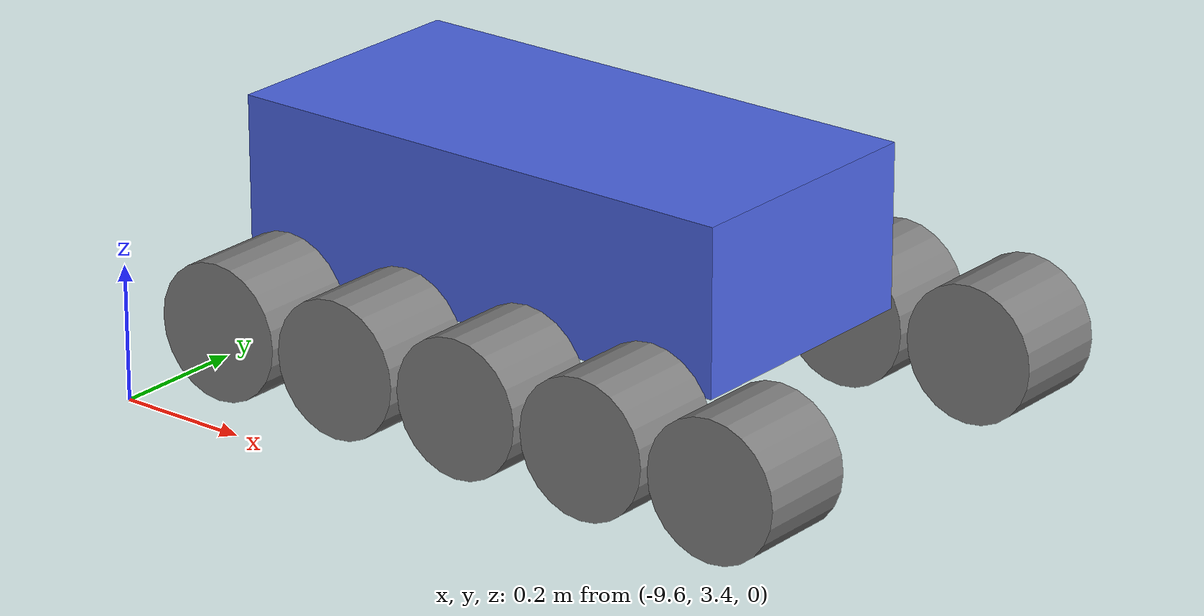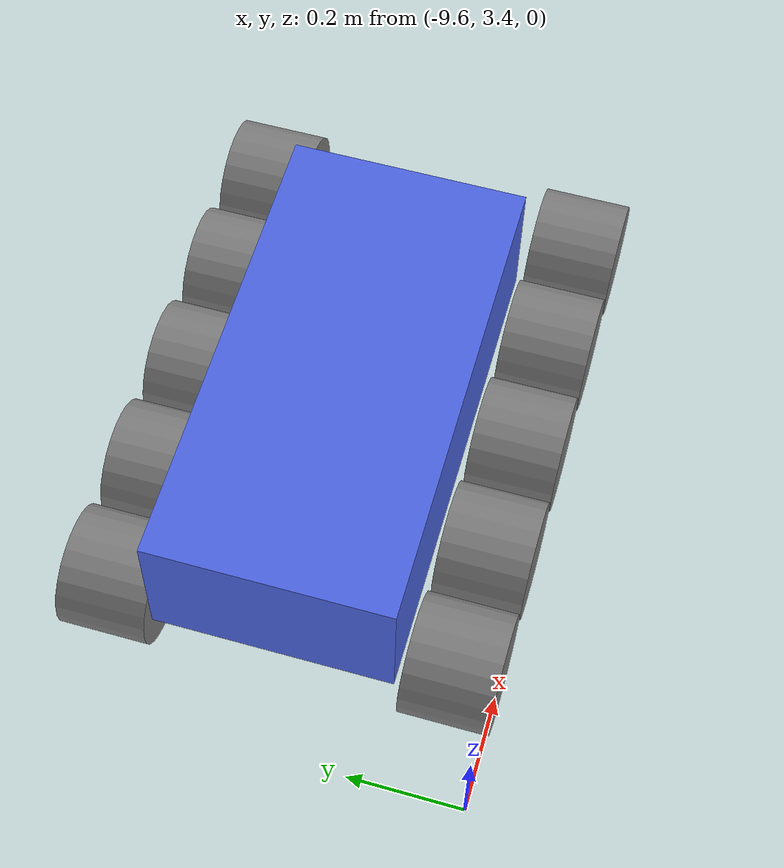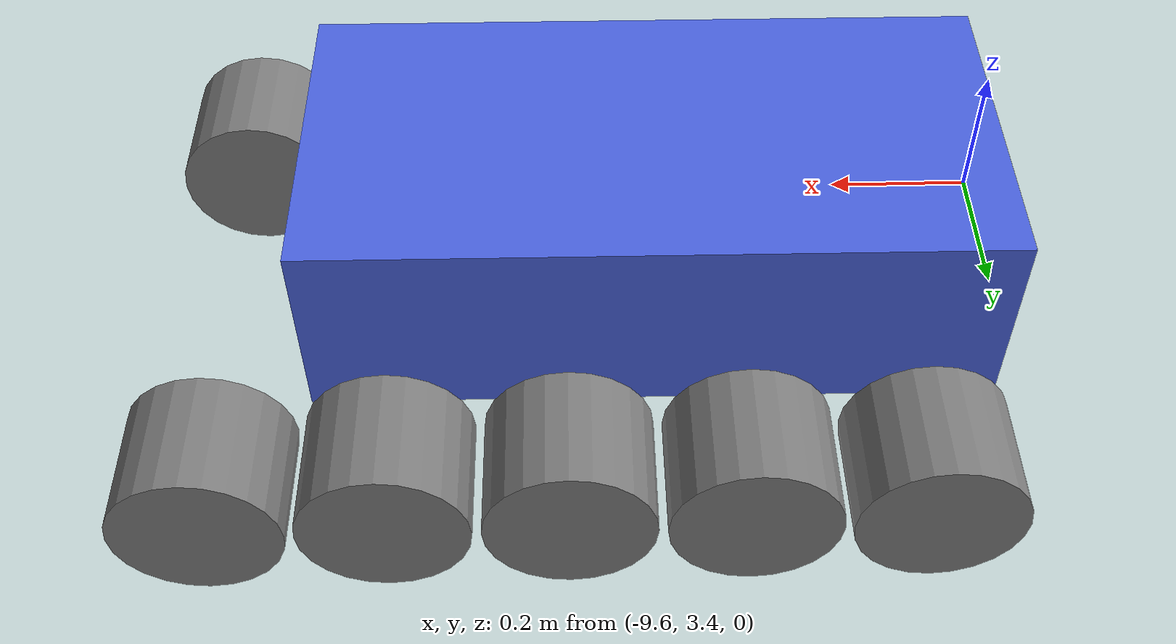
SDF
<sdf version="1.9">
 <world name="agriculture_v1">
  <physics name="1ms" type="ode">
   <max_step_size>0.001</max_step_size>
   <real_time_factor>1</real_time_factor>
   <ode>
    <solver><type>world</type><iters>100</iters></solver>
    <constraints><contact_surface_layer>0.001</contact_surface_layer></constraints>
   </ode>
  </physics>
  <plugin filename="gz-sim-physics-system" name="gz::sim::systems::Physics"/>
  <plugin filename="gz-sim-user-commands-system" name="gz::sim::systems::UserCommands"/>
  <plugin filename="gz-sim-scene-broadcaster-system" name="gz::sim::systems::SceneBroadcaster"/>
  <plugin filename="BasicSystem" name="ros_gz_example_gazebo::BasicSystem"/>
  <plugin filename="FullSystem" name="ros_gz_example_gazebo::FullSystem"/>
  <spherical_coordinates>
   <surface_model>EARTH_WGS84</surface_model>
   <world_frame_orientation>ENU</world_frame_orientation>
   <latitude_deg>37.0</latitude_deg>
   <longitude_deg>127.0</longitude_deg>
   <elevation>0</elevation>
   <heading_deg>0</heading_deg>
  </spherical_coordinates>
  <light type="directional" name="sun">
   <pose>0 0 40 0 0 0</pose>
   <diffuse>0.8 0.8 0.8 1</diffuse>
   <specular>0.2 0.2 0.2 1</specular>
   <attenuation>
    <range>1000</range>
    <constant>0.9</constant>
    <linear>0.01</linear>
    <quadratic>0.001</quadratic>
   </attenuation>
   <direction>-0.5 0.1 -0.9</direction>
  </light>
  <model name="tracked_v2">
   <self_collide>true</self_collide>
   <pose>-9 3.75 0.05 0 0 0</pose>
   <include merge="true"><uri>package://ros_gz_example_description/models/tracked_v2</uri></include>
   <plugin filename="gz-sim-joint-state-publisher-system" name="gz::sim::systems::JointStatePublisher"/>
   <plugin filename="gz-sim-pose-publisher-system" name="gz::sim::systems::PosePublisher">
    <publish_model_pose>true</publish_model_pose>
    <publish_link_pose>true</publish_link_pose>
    <publish_sensor_pose>true</publish_sensor_pose>
    <use_pose_vector_msg>true</use_pose_vector_msg>
    <update_frequency>1</update_frequency>
    <static_publisher>false</static_publisher>
    <static_update_frequency>1</static_update_frequency>
   </plugin>
   <plugin filename="gz-sim-diff-drive-system" name="gz::sim::systems::DiffDrive">
    <left_joint>wheel_L1_joint</left_joint>
    <right_joint>wheel_R1_joint</right_joint>
    <left_joint>wheel_L2_joint</left_joint>
    <right_joint>wheel_R2_joint</right_joint>
    <left_joint>wheel_L3_joint</left_joint>
    <right_joint>wheel_R3_joint</right_joint>
    <left_joint>wheel_L4_joint</left_joint>
    <right_joint>wheel_R4_joint</right_joint>
    <left_joint>wheel_L5_joint</left_joint>
    <right_joint>wheel_R5_joint</right_joint>
    <wheel_separation>0.57</wheel_separation>
    <wheel_radius>0.10</wheel_radius>
    <topic>/model/tracked_v2/cmd_vel_out</topic>
    <max_linear_acceleration>1</max_linear_acceleration>
    <min_linear_acceleration>-1</min_linear_acceleration>
    <max_angular_acceleration>2</max_angular_acceleration>
    <min_angular_acceleration>-2</min_angular_acceleration>
    <max_linear_velocity>5</max_linear_velocity>
    <min_linear_velocity>-5</min_linear_velocity>
    <max_angular_velocity>50</max_angular_velocity>
    <min_angular_velocity>-50</min_angular_velocity>
    <min_wheel_torque>-40</min_wheel_torque>
    <max_wheel_torque>40</max_wheel_torque>
   </plugin>
   <plugin filename="gz-sim-imu-system" name="gz::sim::systems::Imu"/>
   <plugin filename="gz-sim-navsat-system" name="gz::sim::systems::NavSat"/>
   <plugin filename="gz-sim-magnetometer-system" name="gz::sim::systems::Magnetometer"/>
  </model>
 </world>
</sdf>

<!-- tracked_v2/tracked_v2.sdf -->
<sdf version="1.9">

  <model name="tracked_v2">
    <static>false</static>
    <pose>0 0 0 0 0 0</pose>

    <link name="chassis_link">
      <pose>-0.1 0 0.26 0 0 0</pose>

      <inertial>
          <mass>100.0</mass>
          <inertia>
          <ixx>1.81</ixx> <iyy>5.81</iyy> <izz>6.67</izz>
          <ixy>0.0</ixy> <ixz>0.0</ixz> <iyz>0.0</iyz>
          </inertia>
      </inertial>

      <collision name="chassis_collision">
          <geometry>
          <box><size>0.8 0.4 0.24</size></box>
          </geometry>
      </collision>

      <visual name="chassis_visual">
          <geometry>
          <box><size>0.8 0.4 0.24</size></box>
          </geometry>
          <material>
          <ambient>0.3 0.4 0.9 1</ambient>
          <diffuse>0.3 0.4 0.9 1</diffuse>
          </material>
      </visual>

      <sensor name="imu_sensor" type="imu">
          <always_on>true</always_on>
          <update_rate>100</update_rate>
          <visualize>false</visualize>
          <topic>imu</topic>
          <pose>0.1 0 0 0 0 0</pose>

      </sensor>

      <sensor name="navsat_sensor" type="navsat">
        <always_on>true</always_on>
        <update_rate>10.0</update_rate>
        <topic>navsat</topic>
        <visualize>false</visualize>
          <pose>0.1 0 0 0 0 0</pose>
      </sensor>

      <sensor name="magnetometer_sensor" type="magnetometer">
        <always_on>true</always_on>
        <update_rate>100.0</update_rate>
        <topic>magnetometer</topic>
          <pose>0.1 0 0 0 0 0</pose>

      </sensor>

    </link>

    <link name="wheel_R1_link">
        <pose>0.42 -0.285 0.1 1.5708 0 0</pose>

      <visual name="wheel_R1_visual">
        <geometry>
          <cylinder>
            <radius>0.1</radius>
            <length>0.15</length>
          </cylinder>
        </geometry>
        <material>
          <ambient>0.5 0.5 0.5 1</ambient>
          <diffuse>0.5 0.5 0.5 1</diffuse>
          <specular>0.1 0.1 0.1 1</specular>
        </material>
      </visual>

      <collision name="wheel_R1_collision">
        <geometry>
          <cylinder>
            <radius>0.1</radius>
            <length>0.15</length>
          </cylinder>
        </geometry>

        <surface>
          <friction>
            <ode>
              <mu>1.2</mu>
              <mu2>0.7</mu2>
              <fdir1>1 0 0</fdir1>
              <slip1>0.0</slip1>
              <slip2>0.001</slip2>
            </ode>
          </friction>
          <contact>
            <ode>
              <soft_cfm>0.002</soft_cfm>
              <soft_erp>0.002</soft_erp>
              <kp>1000</kp>
              <kd>500</kd>
            </ode>
          </contact>
        </surface>
      </collision>

      <inertial>
        <mass>5.0</mass>
        <inertia>
          <ixx>0.025</ixx>
          <iyy>0.025</iyy>
          <izz>0.031</izz>
          <ixy>0</ixy>
          <ixz>0</ixz>
          <iyz>0</iyz>
        </inertia>
      </inertial>
    </link>

    <joint name="wheel_R1_joint" type="revolute">
      <parent>chassis_link</parent>
      <child>wheel_R1_link</child>

      <pose>0 0 0 0 0 0</pose>

      <axis>
        <xyz>0 0 -1</xyz>

        <limit>
          <lower>-1.79769e+308</lower>
          <upper>1.79769e+308</upper>
          <effort>10000.0</effort>
          <velocity>10000.0</velocity>
        </limit>

        <dynamics>
          <damping>0.1</damping>
          <friction>0.01</friction>
        </dynamics>
      </axis>

      <physics>
        <provide_feedback>true</provide_feedback>
      </physics>

    </joint>

    <link name="wheel_R2_link">
        <pose>0.21 -0.285 0.1 1.5708 0 0</pose>

      <visual name="wheel_R2_visual">
        <geometry>
          <cylinder>
            <radius>0.1</radius>
            <length>0.15</length>
          </cylinder>
        </geometry>
        <material>
          <ambient>0.5 0.5 0.5 1</ambient>
          <diffuse>0.5 0.5 0.5 1</diffuse>
          <specular>0.1 0.1 0.1 1</specular>
        </material>
      </visual>

      <collision name="wheel_R2_collision">
        <geometry>
          <cylinder>
            <radius>0.1</radius>
            <length>0.15</length>
          </cylinder>
        </geometry>

        <surface>
          <friction>
            <ode>
              <mu>1.2</mu>
              <mu2>0.7</mu2>
              <fdir1>1 0 0</fdir1>
              <slip1>0.0</slip1>
              <slip2>0.001</slip2>
            </ode>
          </friction>
          <contact>
            <ode>
              <soft_cfm>0.002</soft_cfm>
              <soft_erp>0.002</soft_erp>
              <kp>1000</kp>
              <kd>500</kd>
            </ode>
          </contact>
        </surface>
      </collision>

      <inertial>
        <mass>5.0</mass>
        <inertia>
          <ixx>0.025</ixx>
          <iyy>0.025</iyy>
          <izz>0.031</izz>
          <ixy>0</ixy>
          <ixz>0</ixz>
          <iyz>0</iyz>
        </inertia>
      </inertial>
    </link>

    <joint name="wheel_R2_joint" type="revolute">
      <parent>chassis_link</parent>
      <child>wheel_R2_link</child>

      <pose>0 0 0 0 0 0</pose>

      <axis>
        <xyz>0 0 -1</xyz>

        <limit>
          <lower>-1.79769e+308</lower>
          <upper>1.79769e+308</upper>
          <effort>10000.0</effort>
          <velocity>10000.0</velocity>
        </limit>

        <dynamics>
          <damping>0.1</damping>
          <friction>0.01</friction>
        </dynamics>
      </axis>

      <physics>
        <provide_feedback>true</provide_feedback>
      </physics>

    </joint>

    <link name="wheel_R3_link">
        <pose>0 -0.285 0.1 1.5708 0 0</pose>

      <visual name="wheel_R3_visual">
        <geometry>
          <cylinder>
            <radius>0.1</radius>
            <length>0.15</length>
          </cylinder>
        </geometry>
        <material>
          <ambient>0.5 0.5 0.5 1</ambient>
          <diffuse>0.5 0.5 0.5 1</diffuse>
          <specular>0.1 0.1 0.1 1</specular>
        </material>
      </visual>

      <collision name="wheel_R3_collision">
        <geometry>
          <cylinder>
            <radius>0.1</radius>
            <length>0.15</length>
          </cylinder>
        </geometry>

        <surface>
          <friction>
            <ode>
              <mu>1.2</mu>
              <mu2>0.7</mu2>
              <fdir1>1 0 0</fdir1>
              <slip1>0.0</slip1>
              <slip2>0.001</slip2>
            </ode>
          </friction>
          <contact>
            <ode>
              <soft_cfm>0.002</soft_cfm>
              <soft_erp>0.002</soft_erp>
              <kp>1000</kp>
              <kd>500</kd>
            </ode>
          </contact>
        </surface>
      </collision>

      <inertial>
        <mass>5.0</mass>
        <inertia>
          <ixx>0.025</ixx>
          <iyy>0.025</iyy>
          <izz>0.031</izz>
          <ixy>0</ixy>
          <ixz>0</ixz>
          <iyz>0</iyz>
        </inertia>
      </inertial>
    </link>

    <joint name="wheel_R3_joint" type="revolute">
      <parent>chassis_link</parent>
      <child>wheel_R3_link</child>

      <pose>0 0 0 0 0 0</pose>

      <axis>
        <xyz>0 0 -1</xyz>

        <limit>
          <lower>-1.79769e+308</lower>
          <upper>1.79769e+308</upper>
          <effort>10000.0</effort>
          <velocity>10000.0</velocity>
        </limit>

        <dynamics>
          <damping>0.1</damping>
          <friction>0.01</friction>
        </dynamics>
      </axis>

      <physics>
        <provide_feedback>true</provide_feedback>
      </physics>

    </joint>

    <link name="wheel_R4_link">
        <pose>-0.21 -0.285 0.1 1.5708 0 0</pose>

      <visual name="wheel_R4_visual">
        <geometry>
          <cylinder>
            <radius>0.1</radius>
            <length>0.15</length>
          </cylinder>
        </geometry>
        <material>
          <ambient>0.5 0.5 0.5 1</ambient>
          <diffuse>0.5 0.5 0.5 1</diffuse>
          <specular>0.1 0.1 0.1 1</specular>
        </material>
      </visual>

      <collision name="wheel_R4_collision">
        <geometry>
          <cylinder>
            <radius>0.1</radius>
            <length>0.15</length>
          </cylinder>
        </geometry>

        <surface>
          <friction>
            <ode>
              <mu>1.2</mu>
              <mu2>0.7</mu2>
              <fdir1>1 0 0</fdir1>
              <slip1>0.0</slip1>
              <slip2>0.001</slip2>
            </ode>
          </friction>
          <contact>
            <ode>
              <soft_cfm>0.002</soft_cfm>
              <soft_erp>0.002</soft_erp>
              <kp>1000</kp>
              <kd>500</kd>
            </ode>
          </contact>
        </surface>
      </collision>

      <inertial>
        <mass>5.0</mass>
        <inertia>
          <ixx>0.025</ixx>
          <iyy>0.025</iyy>
          <izz>0.031</izz>
          <ixy>0</ixy>
          <ixz>0</ixz>
          <iyz>0</iyz>
        </inertia>
      </inertial>
    </link>

    <joint name="wheel_R4_joint" type="revolute">
      <parent>chassis_link</parent>
      <child>wheel_R4_link</child>

      <pose>0 0 0 0 0 0</pose>

      <axis>
        <xyz>0 0 -1</xyz>

        <limit>
          <lower>-1.79769e+308</lower>
          <upper>1.79769e+308</upper>
          <effort>10000.0</effort>
          <velocity>10000.0</velocity>
        </limit>

        <dynamics>
          <damping>0.1</damping>
          <friction>0.01</friction>
        </dynamics>
      </axis>

      <physics>
        <provide_feedback>true</provide_feedback>
      </physics>

    </joint>

    <link name="wheel_R5_link">
        <pose>-0.42 -0.285 0.1 1.5708 0 0</pose>

      <visual name="wheel_R5_visual">
        <geometry>
          <cylinder>
            <radius>0.1</radius>
            <length>0.15</length>
          </cylinder>
        </geometry>
        <material>
          <ambient>0.5 0.5 0.5 1</ambient>
          <diffuse>0.5 0.5 0.5 1</diffuse>
          <specular>0.1 0.1 0.1 1</specular>
        </material>
      </visual>

      <collision name="wheel_R5_collision">
        <geometry>
          <cylinder>
            <radius>0.1</radius>
            <length>0.15</length>
          </cylinder>
        </geometry>

        <surface>
          <friction>
            <ode>
              <mu>1.2</mu>
              <mu2>0.7</mu2>
              <fdir1>1 0 0</fdir1>
              <slip1>0.0</slip1>
              <slip2>0.001</slip2>
            </ode>
          </friction>
          <contact>
            <ode>
              <soft_cfm>0.002</soft_cfm>
              <soft_erp>0.002</soft_erp>
              <kp>1000</kp>
              <kd>500</kd>
            </ode>
          </contact>
        </surface>
      </collision>

      <inertial>
        <mass>5.0</mass>
        <inertia>
          <ixx>0.025</ixx>
          <iyy>0.025</iyy>
          <izz>0.031</izz>
          <ixy>0</ixy>
          <ixz>0</ixz>
          <iyz>0</iyz>
        </inertia>
      </inertial>
    </link>

    <joint name="wheel_R5_joint" type="revolute">
      <parent>chassis_link</parent>
      <child>wheel_R5_link</child>

      <pose>0 0 0 0 0 0</pose>

      <axis>
        <xyz>0 0 -1</xyz>

        <limit>
          <lower>-1.79769e+308</lower>
          <upper>1.79769e+308</upper>
          <effort>10000.0</effort>
          <velocity>10000.0</velocity>
        </limit>

        <dynamics>
          <damping>0.1</damping>
          <friction>0.01</friction>
        </dynamics>
      </axis>

      <physics>
        <provide_feedback>true</provide_feedback>
      </physics>

    </joint>

    <link name="wheel_L1_link">
        <pose>0.42 0.285 0.1 1.5708 0 0</pose>

      <visual name="wheel_L1_visual">
        <geometry>
          <cylinder>
            <radius>0.1</radius>
            <length>0.15</length>
          </cylinder>
        </geometry>
        <material>
          <ambient>0.5 0.5 0.5 1</ambient>
          <diffuse>0.5 0.5 0.5 1</diffuse>
          <specular>0.1 0.1 0.1 1</specular>
        </material>
      </visual>

      <collision name="wheel_L1_collision">
        <geometry>
          <cylinder>
            <radius>0.1</radius>
            <length>0.15</length>
          </cylinder>
        </geometry>

        <surface>
          <friction>
            <ode>
              <mu>1.2</mu>
              <mu2>0.7</mu2>
              <fdir1>1 0 0</fdir1>
              <slip1>0.0</slip1>
              <slip2>0.001</slip2>
            </ode>
          </friction>
          <contact>
            <ode>
              <soft_cfm>0.002</soft_cfm>
              <soft_erp>0.002</soft_erp>
              <kp>1000</kp>
              <kd>500</kd>
            </ode>
          </contact>
        </surface>
      </collision>

      <inertial>
        <mass>5.0</mass>
        <inertia>
          <ixx>0.025</ixx>
          <iyy>0.025</iyy>
          <izz>0.031</izz>
          <ixy>0</ixy>
          <ixz>0</ixz>
          <iyz>0</iyz>
        </inertia>
      </inertial>
    </link>

    <joint name="wheel_L1_joint" type="revolute">
      <parent>chassis_link</parent>
      <child>wheel_L1_link</child>

      <pose>0 0 0 0 0 0</pose>

      <axis>
        <xyz>0 0 -1</xyz>

        <limit>
          <lower>-1.79769e+308</lower>
          <upper>1.79769e+308</upper>
          <effort>10000.0</effort>
          <velocity>10000.0</velocity>
        </limit>

        <dynamics>
          <damping>0.1</damping>
          <friction>0.01</friction>
        </dynamics>
      </axis>

      <physics>
        <provide_feedback>true</provide_feedback>
      </physics>

    </joint>

    <link name="wheel_L2_link">
        <pose>0.21 0.285 0.1 1.5708 0 0</pose>

      <visual name="wheel_L2_visual">
        <geometry>
          <cylinder>
            <radius>0.1</radius>
            <length>0.15</length>
          </cylinder>
        </geometry>
        <material>
          <ambient>0.5 0.5 0.5 1</ambient>
          <diffuse>0.5 0.5 0.5 1</diffuse>
          <specular>0.1 0.1 0.1 1</specular>
        </material>
      </visual>

      <collision name="wheel_L2_collision">
        <geometry>
          <cylinder>
            <radius>0.1</radius>
            <length>0.15</length>
          </cylinder>
        </geometry>

        <surface>
          <friction>
            <ode>
              <mu>1.2</mu>
              <mu2>0.7</mu2>
              <fdir1>1 0 0</fdir1>
              <slip1>0.0</slip1>
              <slip2>0.001</slip2>
            </ode>
          </friction>
          <contact>
            <ode>
              <soft_cfm>0.002</soft_cfm>
              <soft_erp>0.002</soft_erp>
              <kp>1000</kp>
              <kd>500</kd>
            </ode>
          </contact>
        </surface>
      </collision>

      <inertial>
        <mass>5.0</mass>
        <inertia>
          <ixx>0.025</ixx>
          <iyy>0.025</iyy>
          <izz>0.031</izz>
          <ixy>0</ixy>
          <ixz>0</ixz>
          <iyz>0</iyz>
        </inertia>
      </inertial>
    </link>

    <joint name="wheel_L2_joint" type="revolute">
      <parent>chassis_link</parent>
      <child>wheel_L2_link</child>

      <pose>0 0 0 0 0 0</pose>

      <axis>
        <xyz>0 0 -1</xyz>

        <limit>
          <lower>-1.79769e+308</lower>
          <upper>1.79769e+308</upper>
          <effort>10000.0</effort>
          <velocity>10000.0</velocity>
        </limit>

        <dynamics>
          <damping>0.1</damping>
          <friction>0.01</friction>
        </dynamics>
      </axis>

      <physics>
        <provide_feedback>true</provide_feedback>
      </physics>

    </joint>

    <link name="wheel_L3_link">
        <pose>0 0.285 0.1 1.5708 0 0</pose>

      <visual name="wheel_L3_visual">
        <geometry>
          <cylinder>
            <radius>0.1</radius>
            <length>0.15</length>
          </cylinder>
        </geometry>
        <material>
          <ambient>0.5 0.5 0.5 1</ambient>
          <diffuse>0.5 0.5 0.5 1</diffuse>
          <specular>0.1 0.1 0.1 1</specular>
        </material>
      </visual>

      <collision name="wheel_L3_collision">
        <geometry>
          <cylinder>
            <radius>0.1</radius>
            <length>0.15</length>
          </cylinder>
        </geometry>

        <surface>
          <friction>
            <ode>
              <mu>1.2</mu>
              <mu2>0.7</mu2>
              <fdir1>1 0 0</fdir1>
              <slip1>0.0</slip1>
              <slip2>0.001</slip2>
            </ode>
          </friction>
          <contact>
            <ode>
              <soft_cfm>0.002</soft_cfm>
              <soft_erp>0.002</soft_erp>
              <kp>1000</kp>
              <kd>500</kd>
            </ode>
          </contact>
        </surface>
      </collision>

      <inertial>
        <mass>5.0</mass>
        <inertia>
          <ixx>0.025</ixx>
          <iyy>0.025</iyy>
          <izz>0.031</izz>
          <ixy>0</ixy>
          <ixz>0</ixz>
          <iyz>0</iyz>
        </inertia>
      </inertial>
    </link>

    <joint name="wheel_L3_joint" type="revolute">
      <parent>chassis_link</parent>
      <child>wheel_L3_link</child>

      <pose>0 0 0 0 0 0</pose>

      <axis>
        <xyz>0 0 -1</xyz>

        <limit>
          <lower>-1.79769e+308</lower>
          <upper>1.79769e+308</upper>
          <effort>10000.0</effort>
          <velocity>10000.0</velocity>
        </limit>

        <dynamics>
          <damping>0.1</damping>
          <friction>0.01</friction>
        </dynamics>
      </axis>

      <physics>
        <provide_feedback>true</provide_feedback>
      </physics>

    </joint>

    <link name="wheel_L4_link">
        <pose>-0.21 0.285 0.1 1.5708 0 0</pose>

      <visual name="wheel_L4_visual">
        <geometry>
          <cylinder>
            <radius>0.1</radius>
            <length>0.15</length>
          </cylinder>
        </geometry>
        <material>
          <ambient>0.5 0.5 0.5 1</ambient>
          <diffuse>0.5 0.5 0.5 1</diffuse>
          <specular>0.1 0.1 0.1 1</specular>
        </material>
      </visual>

      <collision name="wheel_L4_collision">
        <geometry>
          <cylinder>
            <radius>0.1</radius>
            <length>0.15</length>
          </cylinder>
        </geometry>

        <surface>
          <friction>
            <ode>
              <mu>1.2</mu>
              <mu2>0.7</mu2>
              <fdir1>1 0 0</fdir1>
              <slip1>0.0</slip1>
              <slip2>0.001</slip2>
            </ode>
          </friction>
          <contact>
            <ode>
              <soft_cfm>0.002</soft_cfm>
              <soft_erp>0.002</soft_erp>
              <kp>1000</kp>
              <kd>500</kd>
            </ode>
          </contact>
        </surface>
      </collision>

      <inertial>
        <mass>5.0</mass>
        <inertia>
          <ixx>0.025</ixx>
          <iyy>0.025</iyy>
          <izz>0.031</izz>
          <ixy>0</ixy>
          <ixz>0</ixz>
          <iyz>0</iyz>
        </inertia>
      </inertial>
    </link>

    <joint name="wheel_L4_joint" type="revolute">
      <parent>chassis_link</parent>
      <child>wheel_L4_link</child>

      <pose>0 0 0 0 0 0</pose>

      <axis>
        <xyz>0 0 -1</xyz>

        <limit>
          <lower>-1.79769e+308</lower>
          <upper>1.79769e+308</upper>
          <effort>10000.0</effort>
          <velocity>10000.0</velocity>
        </limit>

        <dynamics>
          <damping>0.1</damping>
          <friction>0.01</friction>
        </dynamics>
      </axis>

      <physics>
        <provide_feedback>true</provide_feedback>
      </physics>

    </joint>

    <link name="wheel_L5_link">
        <pose>-0.42 0.285 0.1 1.5708 0 0</pose>

      <visual name="wheel_L5_visual">
        <geometry>
          <cylinder>
            <radius>0.1</radius>
            <length>0.15</length>
          </cylinder>
        </geometry>
        <material>
          <ambient>0.5 0.5 0.5 1</ambient>
          <diffuse>0.5 0.5 0.5 1</diffuse>
          <specular>0.1 0.1 0.1 1</specular>
        </material>
      </visual>

      <collision name="wheel_L5_collision">
        <geometry>
          <cylinder>
            <radius>0.1</radius>
            <length>0.15</length>
          </cylinder>
        </geometry>

        <surface>
          <friction>
            <ode>
              <mu>1.2</mu>
              <mu2>0.7</mu2>
              <fdir1>1 0 0</fdir1>
              <slip1>0.0</slip1>
              <slip2>0.001</slip2>
            </ode>
          </friction>
          <contact>
            <ode>
              <soft_cfm>0.002</soft_cfm>
              <soft_erp>0.002</soft_erp>
              <kp>1000</kp>
              <kd>500</kd>
            </ode>
          </contact>
        </surface>
      </collision>

      <inertial>
        <mass>5.0</mass>
        <inertia>
          <ixx>0.025</ixx>
          <iyy>0.025</iyy>
          <izz>0.031</izz>
          <ixy>0</ixy>
          <ixz>0</ixz>
          <iyz>0</iyz>
        </inertia>
      </inertial>
    </link>

    <joint name="wheel_L5_joint" type="revolute">
      <parent>chassis_link</parent>
      <child>wheel_L5_link</child>

      <pose>0 0 0 0 0 0</pose>

      <axis>
        <xyz>0 0 -1</xyz>

        <limit>
          <lower>-1.79769e+308</lower>
          <upper>1.79769e+308</upper>
          <effort>10000.0</effort>
          <velocity>10000.0</velocity>
        </limit>

        <dynamics>
          <damping>0.1</damping>
          <friction>0.01</friction>
        </dynamics>
      </axis>

      <physics>
        <provide_feedback>true</provide_feedback>
      </physics>

    </joint>

  </model>
</sdf>
